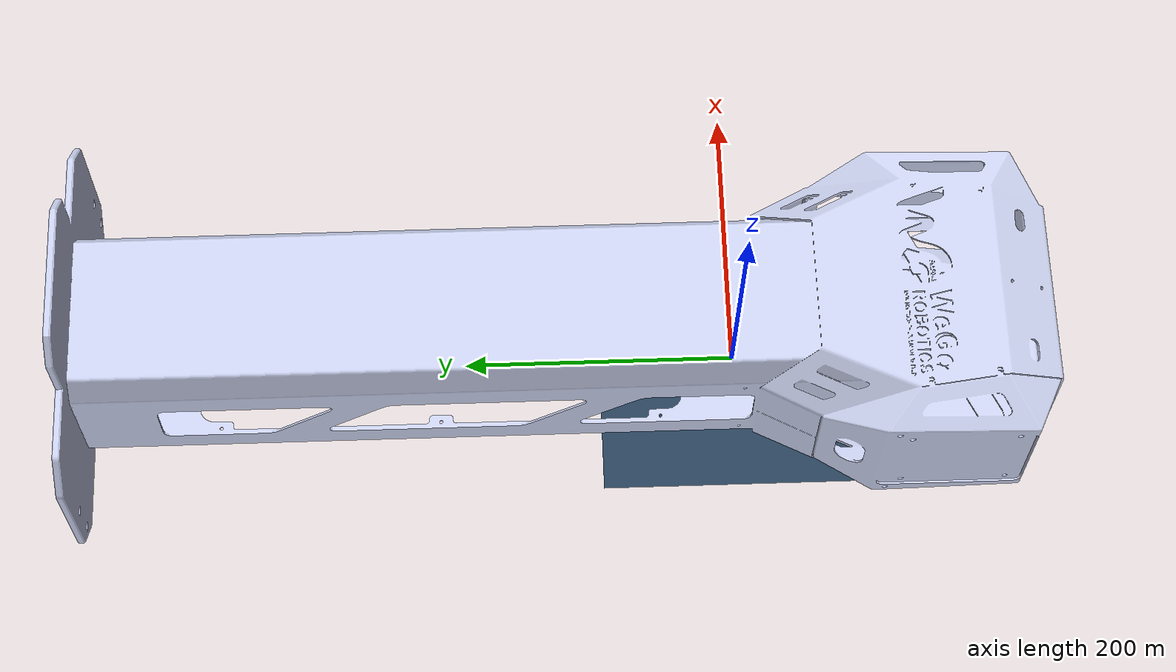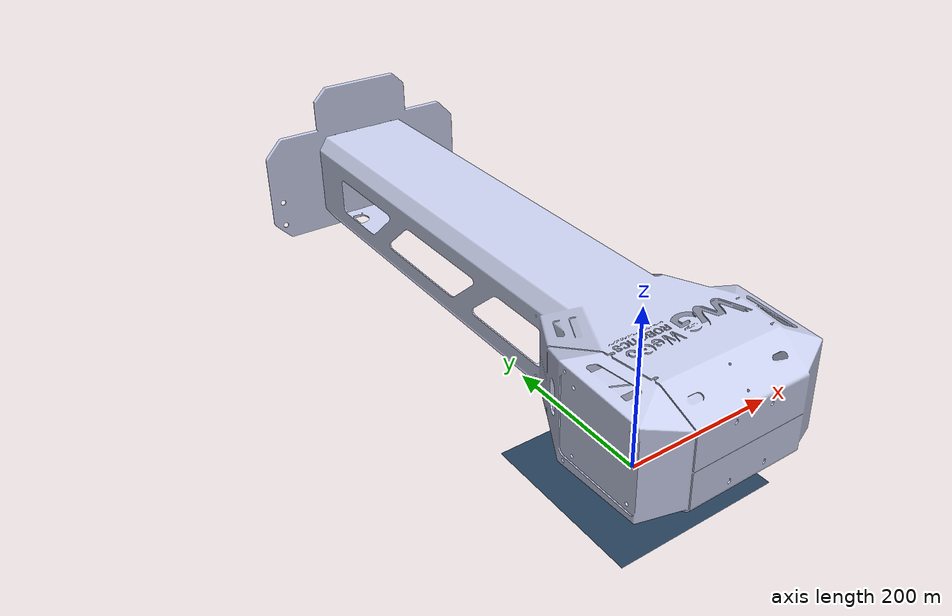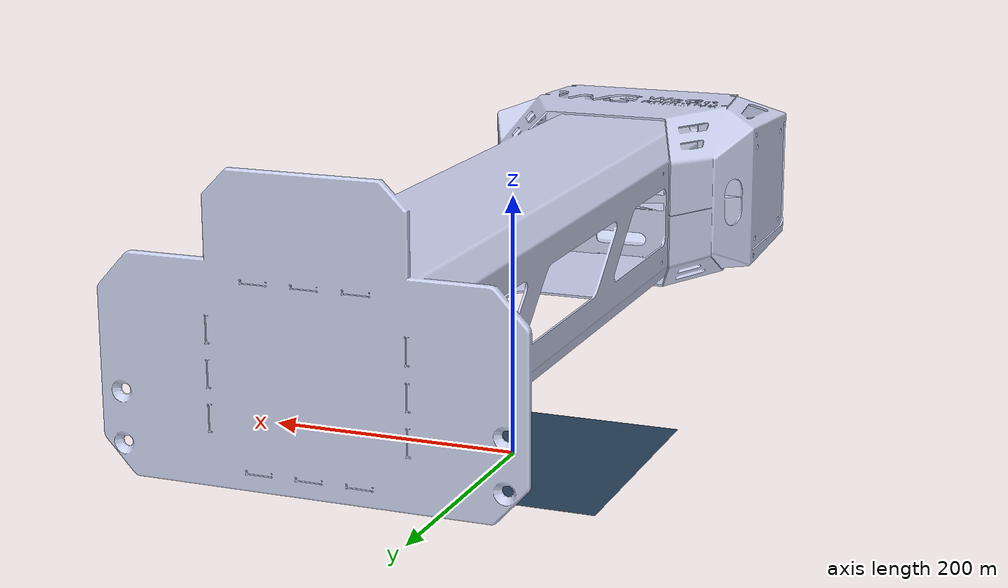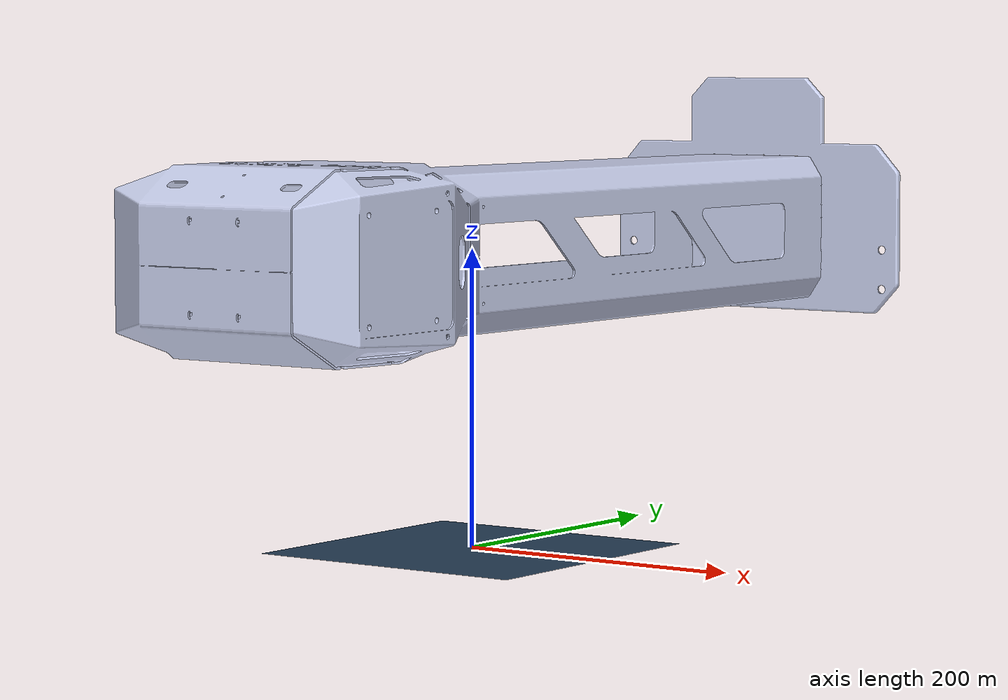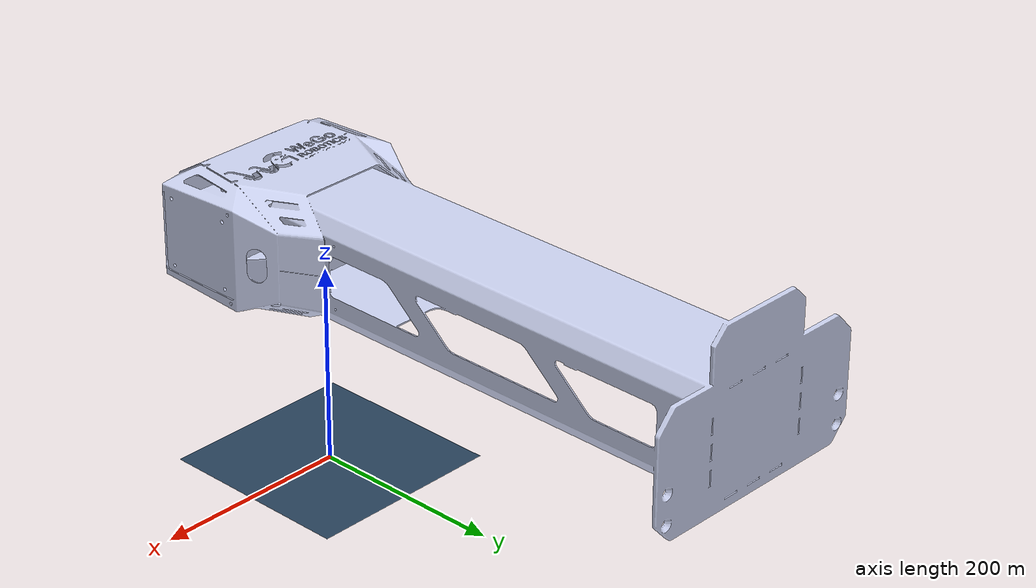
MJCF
<!-- Converted from urdf with urdf2mjcf -->
<!-- Model edited by Jessica Anz -->

<mujoco model="cat_model.SLDASM">
  <option iterations="50" timestep="0.001" solver="PGS" gravity="0 0 -9.81" />

  <compiler angle="radian" meshdir="meshes" eulerseq="zyx" autolimits="true" />

  <default>
    <joint limited="true" damping="0.01" armature="0.01" frictionloss="0.01" />
    <geom condim="4" contype="1" conaffinity="15" friction="0.9 0.2 0.2" solref="0.001 2" />
    <motor ctrllimited="true" />
    <equality solref="0.001 2" />
    <default class="visualgeom">
      <geom material="visualgeom" condim="1" contype="0" conaffinity="0" />
    </default>
  </default>

  <asset>
    <mesh name="base_link" content_type="model/stl" file="base_link.STL" />
    <mesh name="body" content_type="model/stl" file="body.STL" />
    <mesh name="upperleg_fl" content_type="model/stl" file="upperleg_fl.STL" />
    <mesh name="lowerleg_fl" content_type="model/stl" file="lowerleg_fl.STL" />
    <mesh name="upperleg_fr" content_type="model/stl" file="upperleg_fr.STL" />
    <mesh name="lowerleg_fr" content_type="model/stl" file="lowerleg_fr.STL" />
    <mesh name="upperleg_bl" content_type="model/stl" file="upperleg_bl.STL" />
    <mesh name="lowerleg_bl" content_type="model/stl" file="lowerleg_bl.STL" />
    <mesh name="upperleg_br" content_type="model/stl" file="upperleg_br.STL" />
    <mesh name="lowerleg_br" content_type="model/stl" file="lowerleg_br.STL" />
    <texture name="texplane" type="2d" builtin="checker" rgb1="0.2 0.3 0.4" rgb2="0.1 0.2 0.3" width="100" height="100" />
    <material name="matplane" reflectance="0." texture="texplane" texrepeat="1 1" texuniform="true" />
    <material name="visualgeom" rgba="0.5 0.9 0.2 1" />
  </asset>

  <worldbody>
    <light directional="true" diffuse="0.4 0.4 0.4" specular="0.1 0.1 0.1" pos="0 0 5.0" dir="0 0 -1" castshadow="false" />
    <light directional="true" diffuse="0.6 0.6 0.6" specular="0.2 0.2 0.2" pos="0 0 4" dir="0 0 -1" />
    <geom name="ground" type="plane" pos="0 0 0" size="100 100 0.001" quat="1 0 0 0" material="matplane" condim="3" conaffinity="15" />
    <camera name="fixed" pos="0 -3.0 0.6653198081776186" xyaxes="1 0 0 0 0 1" />
    <camera name="track" mode="trackcom" pos="0 -3.0 0.6653198081776186" xyaxes="1 0 0 0 0 1" />
    <body name="root" pos="0 0 0.16531980817761854" quat="1 0 0 0">
      <freejoint name="root" />
      <inertial pos="0.054702 0.046613 0.11825" mass="1.1876" diaginertia="0.0018536 0.0071097 0.0062115"/>

      <geom type="mesh" rgba="1 1 1 0.35" mesh="base_link" contype="1" conaffinity="0" density="0" group="1" class="visualgeom" />
      <geom type="mesh" rgba="1 1 1 0.35" mesh="base_link" />
      <geom pos="-0.04859 0.11829 0.013453" quat="0.707105 0.707108 0 0" type="mesh" rgba="0.79216 0.81961 0.93333 1" mesh="body" contype="1" conaffinity="0" density="0" group="1" class="visualgeom" />
      <geom type="mesh" rgba="0.79216 0.81961 0.93333 1" mesh="body" pos="-0.04859 0.11829 0.013453" quat="0.707105 0.707108 0 0" />

      <body name="upperleg_fl" pos="0.08475 -0.0193398 -0.0349605" quat="0.39098 0 0.920399 3.38081e-06">
        <inertial pos="0.024758 -0.02325 0.024007" quat="0.275606 0.275605 -0.651185 0.651185" mass="0.064696" diaginertia="2.08185e-05 1.56075e-05 1.4023e-05" />
        <joint name="hip_fl" pos="0 0 0" axis="0 1 0" range="-1.57 1.57" />
        <geom type="mesh" rgba="0.79216 0.81961 0.93333 1" mesh="upperleg_fl" contype="1" conaffinity="0" density="0" group="1" class="visualgeom" />
        <geom type="mesh" rgba="0.79216 0.81961 0.93333 1" mesh="upperleg_fl" />
        <body name="lowerleg_fl" pos="0.039486 0 0.038287" quat="0.917266 0 0.398275 0">
          <inertial pos="-4.9993e-09 -0.02325 0.036463" quat="1 0 0 -4.48011e-06" mass="0.074855" diaginertia="3.3795e-05 2.3514e-05 2.0453e-05" />
          <joint name="knee_fl" pos="0 0 0" axis="0 1 0" range="-1.57 1.57" />
          <geom type="mesh" rgba="0.79216 0.81961 0.93333 1" mesh="lowerleg_fl" contype="1" conaffinity="0" density="0" group="1" class="visualgeom" />
          <geom type="mesh" rgba="0.79216 0.81961 0.93333 1" mesh="lowerleg_fl" />
        </body>
      </body>

      <body name="upperleg_fr" pos="0.08475 0.0658472 -0.0349602" quat="-3.38051e-06 0.920317 0 -0.391172">
        <inertial pos="0.024758 0.02325 0.024007" quat="0.275606 0.275605 -0.651185 0.651185" mass="0.064696" diaginertia="2.08185e-05 1.56075e-05 1.4023e-05" />
        <joint name="hip_fr" pos="0 0 0" axis="0 1 0" range="-1.57 1.57" />
        <geom type="mesh" rgba="0.79216 0.81961 0.93333 1" mesh="upperleg_fr" contype="1" conaffinity="0" density="0" group="1" class="visualgeom" />
        <geom type="mesh" rgba="0.79216 0.81961 0.93333 1" mesh="upperleg_fr" />
        <body name="lowerleg_fr" pos="0.039486 0 0.038287" quat="0.921712 0 0.387875 0">
          <inertial pos="-4.552e-09 0.02325 0.036463" quat="1 -7.96272e-07 3.56885e-12 -4.48196e-06" mass="0.074855" diaginertia="3.3795e-05 2.3514e-05 2.0453e-05" />
          <joint name="knee_fr" pos="0 0 0" axis="0 1 0" range="-1.57 1.57" />
          <geom type="mesh" rgba="0.79216 0.81961 0.93333 1" mesh="lowerleg_fr" contype="1" conaffinity="0" density="0" group="1" class="visualgeom" />
          <geom type="mesh" rgba="0.79216 0.81961 0.93333 1" mesh="lowerleg_fr" />
        </body>
      </body>

      <body name="upperleg_bl" pos="-0.084749 -0.0342498 -0.0349606" quat="-3.63614e-06 0.989909 0 0.141706">
        <inertial pos="-0.009763 0.02325 0.034253" quat="0.700478 0.70047 -0.0966244 0.0966234" mass="0.061349" diaginertia="1.92449e-05 1.39801e-05 1.2908e-05" />
        <joint name="hip_bl" pos="0 0 0" axis="0 1 0" range="-1.57 1.57" />
        <geom type="mesh" rgba="0.79216 0.81961 0.93333 1" mesh="upperleg_bl" contype="1" conaffinity="0" density="0" group="1" class="visualgeom" />
        <geom type="mesh" rgba="0.79216 0.81961 0.93333 1" mesh="upperleg_bl" />
        <body name="lowerleg_bl" pos="-0.015108 0 0.052884" quat="-3.63039e-06 0.152231 -5.59175e-07 -0.988345">
          <inertial pos="-4.9664e-09 -0.02325 0.036463" quat="1 0 0 -4.48025e-06" mass="0.074855" diaginertia="3.3795e-05 2.3514e-05 2.0453e-05" />
          <joint name="knee_bl" pos="0 0 0" axis="0 1 0" range="-1.57 1.57" />
          <geom type="mesh" rgba="0.79216 0.81961 0.93333 1" mesh="lowerleg_bl" contype="1" conaffinity="0" density="0" group="1" class="visualgeom" />
          <geom type="mesh" rgba="0.79216 0.81961 0.93333 1" mesh="lowerleg_bl" />
        </body>
      </body>

      <body name="upperleg_br" pos="-0.084749 0.0807542 -0.0349601" quat="0.13845 0 -0.990369 -3.63783e-06">
        <inertial pos="-0.009763 -0.02325 0.034253" quat="0.700478 0.70047 -0.0966244 0.0966234" mass="0.061349" diaginertia="1.92449e-05 1.39801e-05 1.2908e-05" />
        <joint name="hip_br" pos="0 0 0" axis="0 1 0" range="-1.57 1.57" />
        <geom type="mesh" rgba="0.79216 0.81961 0.93333 1" mesh="upperleg_br" contype="1" conaffinity="0" density="0" group="1" class="visualgeom" />
        <geom type="mesh" rgba="0.79216 0.81961 0.93333 1" mesh="upperleg_br" />
        <body name="lowerleg_br" pos="-0.015108 0 0.052884" quat="-3.63771e-06 0.138687 -5.09424e-07 -0.990336">
          <inertial pos="-4.7344e-09 0.02325 0.036463" quat="1 -7.54829e-07 3.38175e-12 -4.48016e-06" mass="0.074855" diaginertia="3.3795e-05 2.3514e-05 2.0453e-05" />
          <joint name="knee_br" pos="0 0 0" axis="0 1 0" range="-1.57 1.57" />
          <geom type="mesh" rgba="0.79216 0.81961 0.93333 1" mesh="lowerleg_br" contype="1" conaffinity="0" density="0" group="1" class="visualgeom" />
          <geom type="mesh" rgba="0.79216 0.81961 0.93333 1" mesh="lowerleg_br" />
        </body>
      </body>

    </body>
  </worldbody>

  <actuator>
    <motor name="hip_fl" joint="hip_fl" ctrllimited="true" ctrlrange="-1 1" gear="1" />
    <motor name="knee_fl" joint="knee_fl" ctrllimited="true" ctrlrange="-1 1" gear="1" />
    <motor name="hip_fr" joint="hip_fr" ctrllimited="true" ctrlrange="-1 1" gear="1" />
    <motor name="knee_fr" joint="knee_fr" ctrllimited="true" ctrlrange="-1 1" gear="1" />
    <motor name="hip_bl" joint="hip_bl" ctrllimited="true" ctrlrange="-1 1" gear="1" />
    <motor name="knee_bl" joint="knee_bl" ctrllimited="true" ctrlrange="-1 1" gear="1" />
    <motor name="hip_br" joint="hip_br" ctrllimited="true" ctrlrange="-1 1" gear="1" />
    <motor name="knee_br" joint="knee_br" ctrllimited="true" ctrlrange="-1 1" gear="1" />
  </actuator>

  <sensor>
    <actuatorpos name="hip_fl_p" actuator="hip_fl" />
    <actuatorvel name="hip_fl_v" actuator="hip_fl" />
    <actuatorfrc name="hip_fl_f" actuator="hip_fl" noise="0.001" />
    <actuatorpos name="knee_fl_p" actuator="knee_fl" />
    <actuatorvel name="knee_fl_v" actuator="knee_fl" />
    <actuatorfrc name="knee_fl_f" actuator="knee_fl" noise="0.001" />
    <actuatorpos name="hip_fr_p" actuator="hip_fr" />
    <actuatorvel name="hip_fr_v" actuator="hip_fr" />
    <actuatorfrc name="hip_fr_f" actuator="hip_fr" noise="0.001" />
    <actuatorpos name="knee_fr_p" actuator="knee_fr" />
    <actuatorvel name="knee_fr_v" actuator="knee_fr" />
    <actuatorfrc name="knee_fr_f" actuator="knee_fr" noise="0.001" />
    <actuatorpos name="hip_bl_p" actuator="hip_bl" />
    <actuatorvel name="hip_bl_v" actuator="hip_bl" />
    <actuatorfrc name="hip_bl_f" actuator="hip_bl" noise="0.001" />
    <actuatorpos name="knee_bl_p" actuator="knee_bl" />
    <actuatorvel name="knee_bl_v" actuator="knee_bl" />
    <actuatorfrc name="knee_bl_f" actuator="knee_bl" noise="0.001" />
    <actuatorpos name="hip_br_p" actuator="hip_br" />
    <actuatorvel name="hip_br_v" actuator="hip_br" />
    <actuatorfrc name="hip_br_f" actuator="hip_br" noise="0.001" />
    <actuatorpos name="knee_br_p" actuator="knee_br" />
    <actuatorvel name="knee_br_v" actuator="knee_br" />
    <actuatorfrc name="knee_br_f" actuator="knee_br" noise="0.001" />
  </sensor>
</mujoco>
